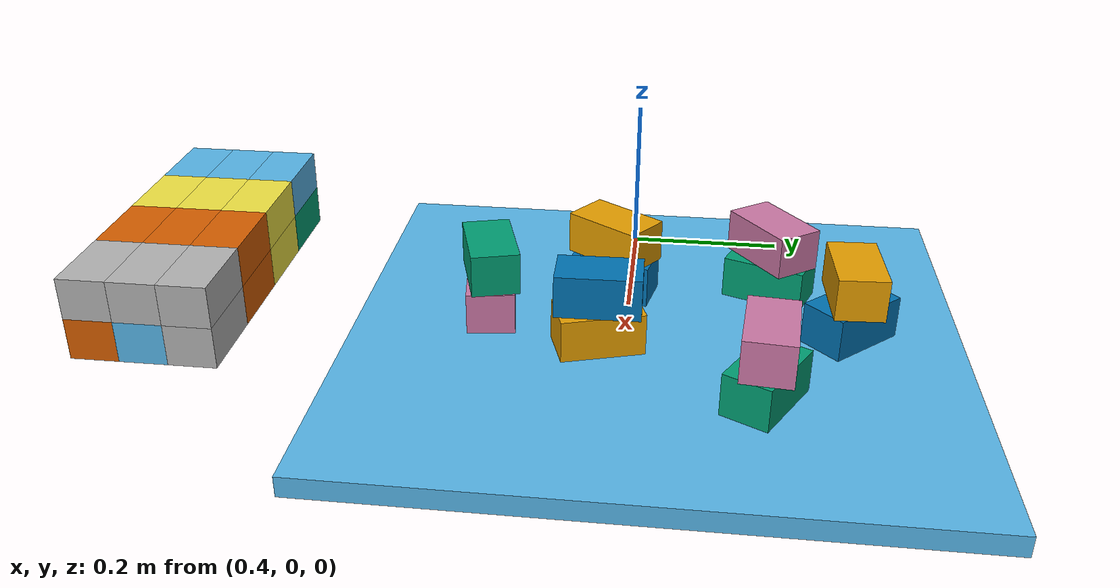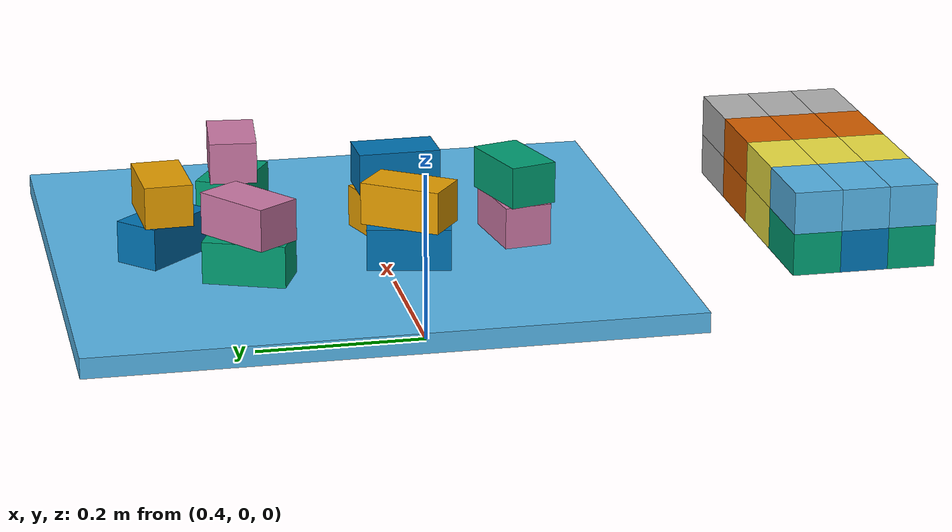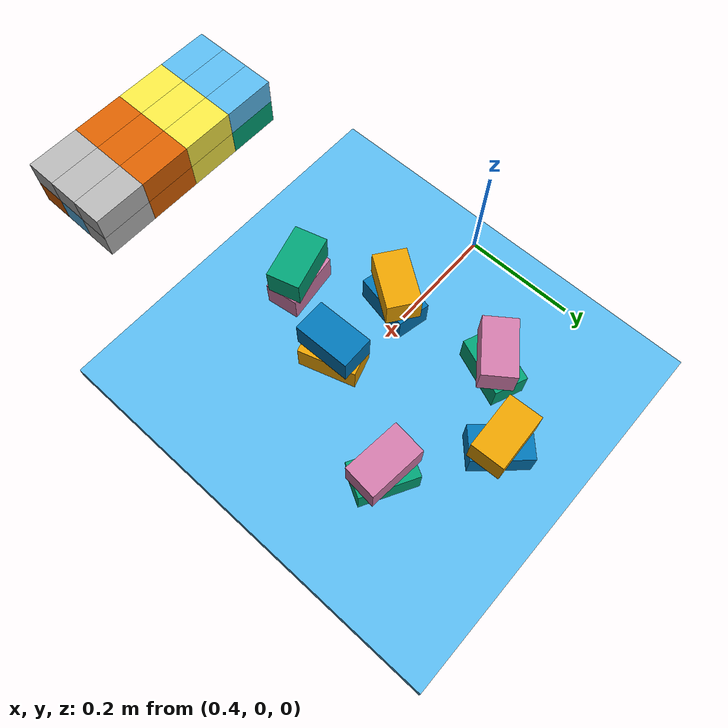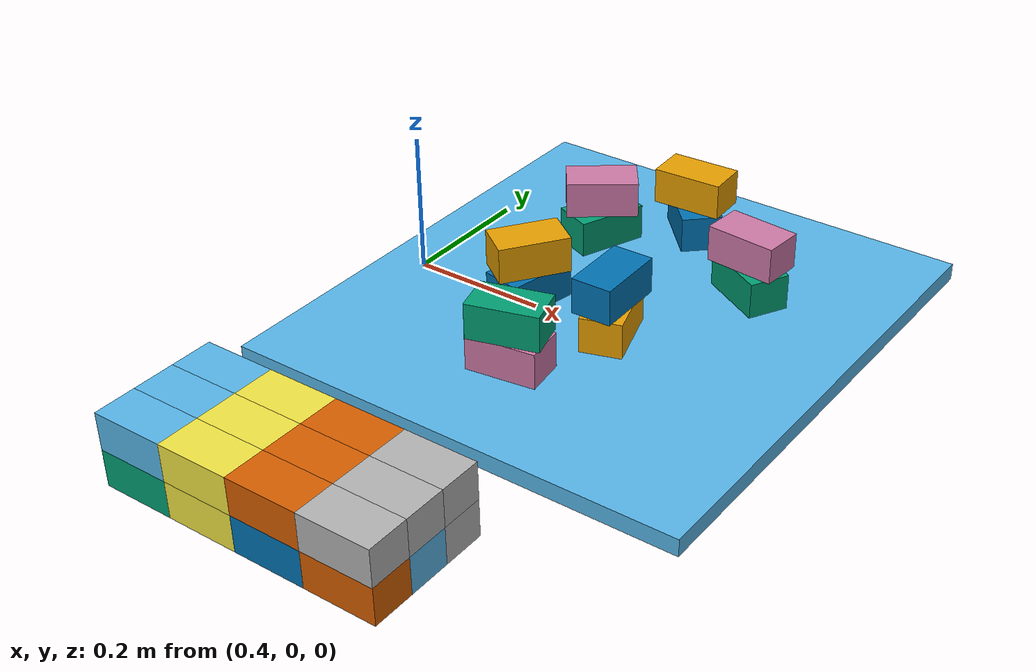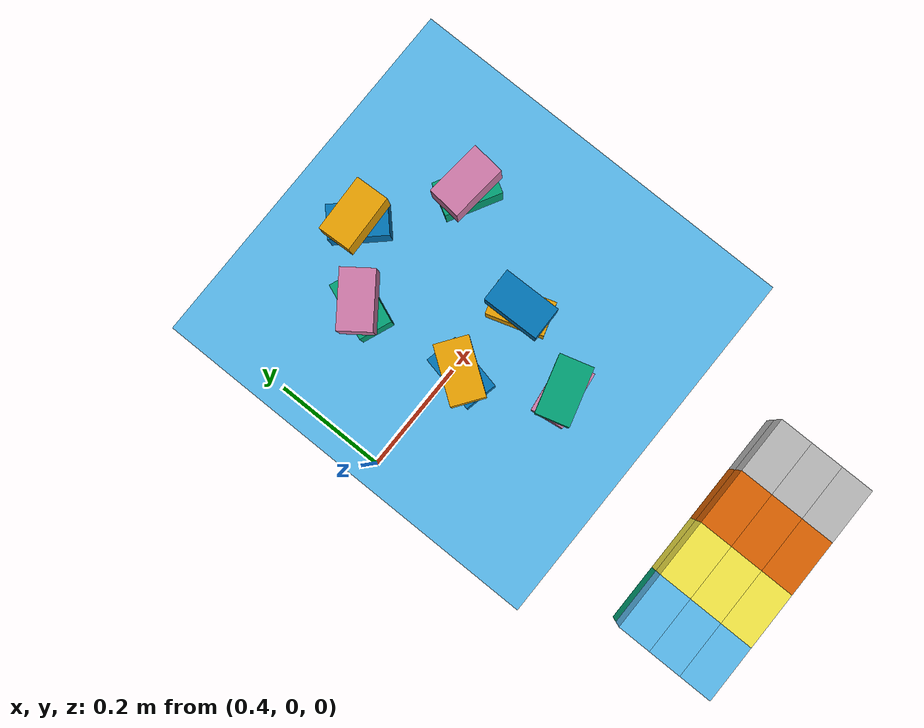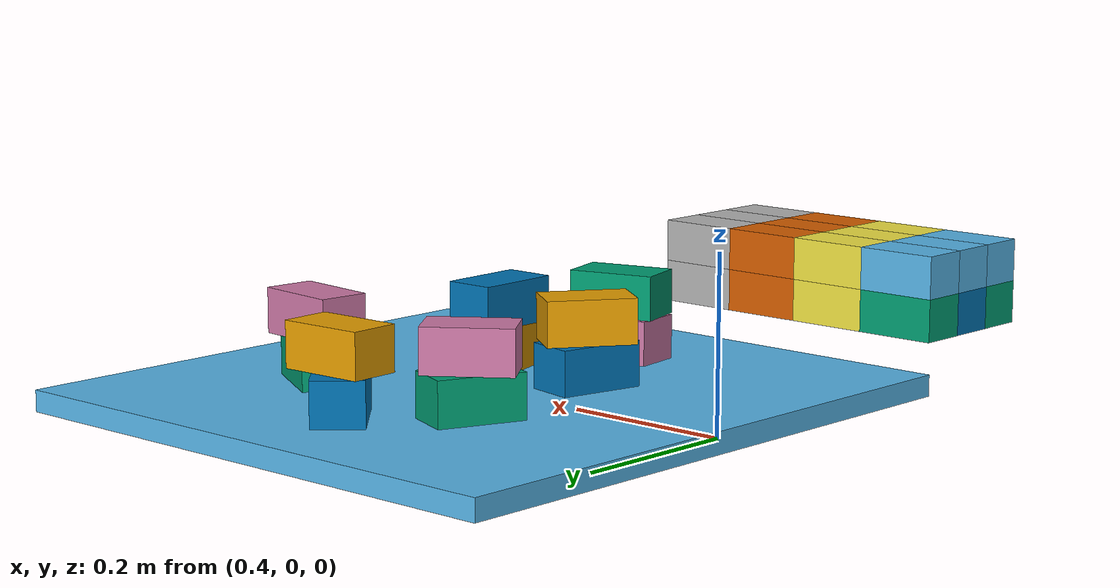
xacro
<?xml version="1.0" encoding="utf-8"?>
<robot name="brick_demo" xmlns:xacro="http://wiki.ros.org/xacro">
	<xacro:include filename="$(find assembly-instances)/assembly_models/picknplace/bricks/urdf/brick_demo_geometry.xacro" />
	<xacro:brick_demo_geometry prefix="workspace_geo_" />
	<link name="base_link" />
	<joint name="world2workspace_geo" type="fixed">
		<parent link="base_link" />
		<child link="workspace_geo_base_link" />
		<origin xyz="0 0 0" rpy="0 0 0" />
	</joint>
</robot>

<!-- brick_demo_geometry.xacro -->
<robot xmlns:xacro="http://wiki.ros.org/xacro">
	<xacro:macro name="brick_demo_geometry" params="prefix">
		<link name="${prefix}base_link" />
		<link name="${prefix}pick_element_0">
			<visual>
				<geometry>
					<mesh filename="$(find assembly-instances)/assembly_models/picknplace/bricks/meshes/collision/element_pick_0.obj" scale="0.001 0.001 0.001" />
				</geometry>
			</visual>
			<collision>
				<geometry>
					<mesh filename="$(find assembly-instances)/assembly_models/picknplace/bricks/meshes/collision/element_pick_0.obj" scale="0.001 0.001 0.001" />
				</geometry>
			</collision>
		</link>
		<joint name="${prefix}base2pick_element_0" type="fixed">
			<parent link="${prefix}base_link" />
			<child link="${prefix}pick_element_0" />
			<origin xyz="0 0 0" rpy="0 0 0" />
		</joint>
		<link name="${prefix}place_element_0">
			<visual>
				<geometry>
					<mesh filename="$(find assembly-instances)/assembly_models/picknplace/bricks/meshes/collision/element_place_0.obj" scale="0.001 0.001 0.001" />
				</geometry>
			</visual>
			<collision>
				<geometry>
					<mesh filename="$(find assembly-instances)/assembly_models/picknplace/bricks/meshes/collision/element_place_0.obj" scale="0.001 0.001 0.001" />
				</geometry>
			</collision>
		</link>
		<joint name="${prefix}base2place_element_0" type="fixed">
			<parent link="${prefix}base_link" />
			<child link="${prefix}place_element_0" />
			<origin xyz="0 0 0" rpy="0 0 0" />
		</joint>
		<link name="${prefix}pick_element_1">
			<visual>
				<geometry>
					<mesh filename="$(find assembly-instances)/assembly_models/picknplace/bricks/meshes/collision/element_pick_1.obj" scale="0.001 0.001 0.001" />
				</geometry>
			</visual>
			<collision>
				<geometry>
					<mesh filename="$(find assembly-instances)/assembly_models/picknplace/bricks/meshes/collision/element_pick_1.obj" scale="0.001 0.001 0.001" />
				</geometry>
			</collision>
		</link>
		<joint name="${prefix}base2pick_element_1" type="fixed">
			<parent link="${prefix}base_link" />
			<child link="${prefix}pick_element_1" />
			<origin xyz="0 0 0" rpy="0 0 0" />
		</joint>
		<link name="${prefix}place_element_1">
			<visual>
				<geometry>
					<mesh filename="$(find assembly-instances)/assembly_models/picknplace/bricks/meshes/collision/element_place_1.obj" scale="0.001 0.001 0.001" />
				</geometry>
			</visual>
			<collision>
				<geometry>
					<mesh filename="$(find assembly-instances)/assembly_models/picknplace/bricks/meshes/collision/element_place_1.obj" scale="0.001 0.001 0.001" />
				</geometry>
			</collision>
		</link>
		<joint name="${prefix}base2place_element_1" type="fixed">
			<parent link="${prefix}base_link" />
			<child link="${prefix}place_element_1" />
			<origin xyz="0 0 0" rpy="0 0 0" />
		</joint>
		<link name="${prefix}pick_element_2">
			<visual>
				<geometry>
					<mesh filename="$(find assembly-instances)/assembly_models/picknplace/bricks/meshes/collision/element_pick_2.obj" scale="0.001 0.001 0.001" />
				</geometry>
			</visual>
			<collision>
				<geometry>
					<mesh filename="$(find assembly-instances)/assembly_models/picknplace/bricks/meshes/collision/element_pick_2.obj" scale="0.001 0.001 0.001" />
				</geometry>
			</collision>
		</link>
		<joint name="${prefix}base2pick_element_2" type="fixed">
			<parent link="${prefix}base_link" />
			<child link="${prefix}pick_element_2" />
			<origin xyz="0 0 0" rpy="0 0 0" />
		</joint>
		<link name="${prefix}place_element_2">
			<visual>
				<geometry>
					<mesh filename="$(find assembly-instances)/assembly_models/picknplace/bricks/meshes/collision/element_place_2.obj" scale="0.001 0.001 0.001" />
				</geometry>
			</visual>
			<collision>
				<geometry>
					<mesh filename="$(find assembly-instances)/assembly_models/picknplace/bricks/meshes/collision/element_place_2.obj" scale="0.001 0.001 0.001" />
				</geometry>
			</collision>
		</link>
		<joint name="${prefix}base2place_element_2" type="fixed">
			<parent link="${prefix}base_link" />
			<child link="${prefix}place_element_2" />
			<origin xyz="0 0 0" rpy="0 0 0" />
		</joint>
		<link name="${prefix}pick_element_3">
			<visual>
				<geometry>
					<mesh filename="$(find assembly-instances)/assembly_models/picknplace/bricks/meshes/collision/element_pick_3.obj" scale="0.001 0.001 0.001" />
				</geometry>
			</visual>
			<collision>
				<geometry>
					<mesh filename="$(find assembly-instances)/assembly_models/picknplace/bricks/meshes/collision/element_pick_3.obj" scale="0.001 0.001 0.001" />
				</geometry>
			</collision>
		</link>
		<joint name="${prefix}base2pick_element_3" type="fixed">
			<parent link="${prefix}base_link" />
			<child link="${prefix}pick_element_3" />
			<origin xyz="0 0 0" rpy="0 0 0" />
		</joint>
		<link name="${prefix}place_element_3">
			<visual>
				<geometry>
					<mesh filename="$(find assembly-instances)/assembly_models/picknplace/bricks/meshes/collision/element_place_3.obj" scale="0.001 0.001 0.001" />
				</geometry>
			</visual>
			<collision>
				<geometry>
					<mesh filename="$(find assembly-instances)/assembly_models/picknplace/bricks/meshes/collision/element_place_3.obj" scale="0.001 0.001 0.001" />
				</geometry>
			</collision>
		</link>
		<joint name="${prefix}base2place_element_3" type="fixed">
			<parent link="${prefix}base_link" />
			<child link="${prefix}place_element_3" />
			<origin xyz="0 0 0" rpy="0 0 0" />
		</joint>
		<link name="${prefix}pick_element_4">
			<visual>
				<geometry>
					<mesh filename="$(find assembly-instances)/assembly_models/picknplace/bricks/meshes/collision/element_pick_4.obj" scale="0.001 0.001 0.001" />
				</geometry>
			</visual>
			<collision>
				<geometry>
					<mesh filename="$(find assembly-instances)/assembly_models/picknplace/bricks/meshes/collision/element_pick_4.obj" scale="0.001 0.001 0.001" />
				</geometry>
			</collision>
		</link>
		<joint name="${prefix}base2pick_element_4" type="fixed">
			<parent link="${prefix}base_link" />
			<child link="${prefix}pick_element_4" />
			<origin xyz="0 0 0" rpy="0 0 0" />
		</joint>
		<link name="${prefix}place_element_4">
			<visual>
				<geometry>
					<mesh filename="$(find assembly-instances)/assembly_models/picknplace/bricks/meshes/collision/element_place_4.obj" scale="0.001 0.001 0.001" />
				</geometry>
			</visual>
			<collision>
				<geometry>
					<mesh filename="$(find assembly-instances)/assembly_models/picknplace/bricks/meshes/collision/element_place_4.obj" scale="0.001 0.001 0.001" />
				</geometry>
			</collision>
		</link>
		<joint name="${prefix}base2place_element_4" type="fixed">
			<parent link="${prefix}base_link" />
			<child link="${prefix}place_element_4" />
			<origin xyz="0 0 0" rpy="0 0 0" />
		</joint>
		<link name="${prefix}pick_element_5">
			<visual>
				<geometry>
					<mesh filename="$(find assembly-instances)/assembly_models/picknplace/bricks/meshes/collision/element_pick_5.obj" scale="0.001 0.001 0.001" />
				</geometry>
			</visual>
			<collision>
				<geometry>
					<mesh filename="$(find assembly-instances)/assembly_models/picknplace/bricks/meshes/collision/element_pick_5.obj" scale="0.001 0.001 0.001" />
				</geometry>
			</collision>
		</link>
		<joint name="${prefix}base2pick_element_5" type="fixed">
			<parent link="${prefix}base_link" />
			<child link="${prefix}pick_element_5" />
			<origin xyz="0 0 0" rpy="0 0 0" />
		</joint>
		<link name="${prefix}place_element_5">
			<visual>
				<geometry>
					<mesh filename="$(find assembly-instances)/assembly_models/picknplace/bricks/meshes/collision/element_place_5.obj" scale="0.001 0.001 0.001" />
				</geometry>
			</visual>
			<collision>
				<geometry>
					<mesh filename="$(find assembly-instances)/assembly_models/picknplace/bricks/meshes/collision/element_place_5.obj" scale="0.001 0.001 0.001" />
				</geometry>
			</collision>
		</link>
		<joint name="${prefix}base2place_element_5" type="fixed">
			<parent link="${prefix}base_link" />
			<child link="${prefix}place_element_5" />
			<origin xyz="0 0 0" rpy="0 0 0" />
		</joint>
		<link name="${prefix}pick_element_6">
			<visual>
				<geometry>
					<mesh filename="$(find assembly-instances)/assembly_models/picknplace/bricks/meshes/collision/element_pick_6.obj" scale="0.001 0.001 0.001" />
				</geometry>
			</visual>
			<collision>
				<geometry>
					<mesh filename="$(find assembly-instances)/assembly_models/picknplace/bricks/meshes/collision/element_pick_6.obj" scale="0.001 0.001 0.001" />
				</geometry>
			</collision>
		</link>
		<joint name="${prefix}base2pick_element_6" type="fixed">
			<parent link="${prefix}base_link" />
			<child link="${prefix}pick_element_6" />
			<origin xyz="0 0 0" rpy="0 0 0" />
		</joint>
		<link name="${prefix}place_element_6">
			<visual>
				<geometry>
					<mesh filename="$(find assembly-instances)/assembly_models/picknplace/bricks/meshes/collision/element_place_6.obj" scale="0.001 0.001 0.001" />
				</geometry>
			</visual>
			<collision>
				<geometry>
					<mesh filename="$(find assembly-instances)/assembly_models/picknplace/bricks/meshes/collision/element_place_6.obj" scale="0.001 0.001 0.001" />
				</geometry>
			</collision>
		</link>
		<joint name="${prefix}base2place_element_6" type="fixed">
			<parent link="${prefix}base_link" />
			<child link="${prefix}place_element_6" />
			<origin xyz="0 0 0" rpy="0 0 0" />
		</joint>
		<link name="${prefix}pick_element_7">
			<visual>
				<geometry>
					<mesh filename="$(find assembly-instances)/assembly_models/picknplace/bricks/meshes/collision/element_pick_7.obj" scale="0.001 0.001 0.001" />
				</geometry>
			</visual>
			<collision>
				<geometry>
					<mesh filename="$(find assembly-instances)/assembly_models/picknplace/bricks/meshes/collision/element_pick_7.obj" scale="0.001 0.001 0.001" />
				</geometry>
			</collision>
		</link>
		<joint name="${prefix}base2pick_element_7" type="fixed">
			<parent link="${prefix}base_link" />
			<child link="${prefix}pick_element_7" />
			<origin xyz="0 0 0" rpy="0 0 0" />
		</joint>
		<link name="${prefix}place_element_7">
			<visual>
				<geometry>
					<mesh filename="$(find assembly-instances)/assembly_models/picknplace/bricks/meshes/collision/element_place_7.obj" scale="0.001 0.001 0.001" />
				</geometry>
			</visual>
			<collision>
				<geometry>
					<mesh filename="$(find assembly-instances)/assembly_models/picknplace/bricks/meshes/collision/element_place_7.obj" scale="0.001 0.001 0.001" />
				</geometry>
			</collision>
		</link>
		<joint name="${prefix}base2place_element_7" type="fixed">
			<parent link="${prefix}base_link" />
			<child link="${prefix}place_element_7" />
			<origin xyz="0 0 0" rpy="0 0 0" />
		</joint>
		<link name="${prefix}pick_element_8">
			<visual>
				<geometry>
					<mesh filename="$(find assembly-instances)/assembly_models/picknplace/bricks/meshes/collision/element_pick_8.obj" scale="0.001 0.001 0.001" />
				</geometry>
			</visual>
			<collision>
				<geometry>
					<mesh filename="$(find assembly-instances)/assembly_models/picknplace/bricks/meshes/collision/element_pick_8.obj" scale="0.001 0.001 0.001" />
				</geometry>
			</collision>
		</link>
		<joint name="${prefix}base2pick_element_8" type="fixed">
			<parent link="${prefix}base_link" />
			<child link="${prefix}pick_element_8" />
			<origin xyz="0 0 0" rpy="0 0 0" />
		</joint>
		<link name="${prefix}place_element_8">
			<visual>
				<geometry>
					<mesh filename="$(find assembly-instances)/assembly_models/picknplace/bricks/meshes/collision/element_place_8.obj" scale="0.001 0.001 0.001" />
				</geometry>
			</visual>
			<collision>
				<geometry>
					<mesh filename="$(find assembly-instances)/assembly_models/picknplace/bricks/meshes/collision/element_place_8.obj" scale="0.001 0.001 0.001" />
				</geometry>
			</collision>
		</link>
		<joint name="${prefix}base2place_element_8" type="fixed">
			<parent link="${prefix}base_link" />
			<child link="${prefix}place_element_8" />
			<origin xyz="0 0 0" rpy="0 0 0" />
		</joint>
		<link name="${prefix}pick_element_9">
			<visual>
				<geometry>
					<mesh filename="$(find assembly-instances)/assembly_models/picknplace/bricks/meshes/collision/element_pick_9.obj" scale="0.001 0.001 0.001" />
				</geometry>
			</visual>
			<collision>
				<geometry>
					<mesh filename="$(find assembly-instances)/assembly_models/picknplace/bricks/meshes/collision/element_pick_9.obj" scale="0.001 0.001 0.001" />
				</geometry>
			</collision>
		</link>
		<joint name="${prefix}base2pick_element_9" type="fixed">
			<parent link="${prefix}base_link" />
			<child link="${prefix}pick_element_9" />
			<origin xyz="0 0 0" rpy="0 0 0" />
		</joint>
		<link name="${prefix}place_element_9">
			<visual>
				<geometry>
					<mesh filename="$(find assembly-instances)/assembly_models/picknplace/bricks/meshes/collision/element_place_9.obj" scale="0.001 0.001 0.001" />
				</geometry>
			</visual>
			<collision>
				<geometry>
					<mesh filename="$(find assembly-instances)/assembly_models/picknplace/bricks/meshes/collision/element_place_9.obj" scale="0.001 0.001 0.001" />
				</geometry>
			</collision>
		</link>
		<joint name="${prefix}base2place_element_9" type="fixed">
			<parent link="${prefix}base_link" />
			<child link="${prefix}place_element_9" />
			<origin xyz="0 0 0" rpy="0 0 0" />
		</joint>
		<link name="${prefix}pick_element_10">
			<visual>
				<geometry>
					<mesh filename="$(find assembly-instances)/assembly_models/picknplace/bricks/meshes/collision/element_pick_10.obj" scale="0.001 0.001 0.001" />
				</geometry>
			</visual>
			<collision>
				<geometry>
					<mesh filename="$(find assembly-instances)/assembly_models/picknplace/bricks/meshes/collision/element_pick_10.obj" scale="0.001 0.001 0.001" />
				</geometry>
			</collision>
		</link>
		<joint name="${prefix}base2pick_element_10" type="fixed">
			<parent link="${prefix}base_link" />
			<child link="${prefix}pick_element_10" />
			<origin xyz="0 0 0" rpy="0 0 0" />
		</joint>
		<link name="${prefix}place_element_10">
			<visual>
				<geometry>
					<mesh filename="$(find assembly-instances)/assembly_models/picknplace/bricks/meshes/collision/element_place_10.obj" scale="0.001 0.001 0.001" />
				</geometry>
			</visual>
			<collision>
				<geometry>
					<mesh filename="$(find assembly-instances)/assembly_models/picknplace/bricks/meshes/collision/element_place_10.obj" scale="0.001 0.001 0.001" />
				</geometry>
			</collision>
		</link>
		<joint name="${prefix}base2place_element_10" type="fixed">
			<parent link="${prefix}base_link" />
			<child link="${prefix}place_element_10" />
			<origin xyz="0 0 0" rpy="0 0 0" />
		</joint>
		<link name="${prefix}pick_element_11">
			<visual>
				<geometry>
					<mesh filename="$(find assembly-instances)/assembly_models/picknplace/bricks/meshes/collision/element_pick_11.obj" scale="0.001 0.001 0.001" />
				</geometry>
			</visual>
			<collision>
				<geometry>
					<mesh filename="$(find assembly-instances)/assembly_models/picknplace/bricks/meshes/collision/element_pick_11.obj" scale="0.001 0.001 0.001" />
				</geometry>
			</collision>
		</link>
		<joint name="${prefix}base2pick_element_11" type="fixed">
			<parent link="${prefix}base_link" />
			<child link="${prefix}pick_element_11" />
			<origin xyz="0 0 0" rpy="0 0 0" />
		</joint>
		<link name="${prefix}place_element_11">
			<visual>
				<geometry>
					<mesh filename="$(find assembly-instances)/assembly_models/picknplace/bricks/meshes/collision/element_place_11.obj" scale="0.001 0.001 0.001" />
				</geometry>
			</visual>
			<collision>
				<geometry>
					<mesh filename="$(find assembly-instances)/assembly_models/picknplace/bricks/meshes/collision/element_place_11.obj" scale="0.001 0.001 0.001" />
				</geometry>
			</collision>
		</link>
		<joint name="${prefix}base2place_element_11" type="fixed">
			<parent link="${prefix}base_link" />
			<child link="${prefix}place_element_11" />
			<origin xyz="0 0 0" rpy="0 0 0" />
		</joint>
		<link name="${prefix}pick_support_object_0">
			<visual>
				<geometry>
					<mesh filename="$(find assembly-instances)/assembly_models/picknplace/bricks/meshes/collision/support_place_table.obj" scale="0.001 0.001 0.001" />
				</geometry>
			</visual>
			<collision>
				<geometry>
					<mesh filename="$(find assembly-instances)/assembly_models/picknplace/bricks/meshes/collision/support_place_table.obj" scale="0.001 0.001 0.001" />
				</geometry>
			</collision>
		</link>
		<joint name="${prefix}base2pick_support_object_0" type="fixed">
			<parent link="${prefix}base_link" />
			<child link="${prefix}pick_support_object_0" />
			<origin xyz="0 0 0" rpy="0 0 0" />
		</joint>
		<link name="${prefix}place_support_object_0">
			<visual>
				<geometry>
					<mesh filename="$(find assembly-instances)/assembly_models/picknplace/bricks/meshes/collision/pick_left_over_bricks_0.obj" scale="0.001 0.001 0.001" />
				</geometry>
			</visual>
			<collision>
				<geometry>
					<mesh filename="$(find assembly-instances)/assembly_models/picknplace/bricks/meshes/collision/pick_left_over_bricks_0.obj" scale="0.001 0.001 0.001" />
				</geometry>
			</collision>
		</link>
		<joint name="${prefix}base2place_support_object_0" type="fixed">
			<parent link="${prefix}base_link" />
			<child link="${prefix}place_support_object_0" />
			<origin xyz="0 0 0" rpy="0 0 0" />
		</joint>
		<link name="${prefix}place_support_object_1">
			<visual>
				<geometry>
					<mesh filename="$(find assembly-instances)/assembly_models/picknplace/bricks/meshes/collision/pick_left_over_bricks_1.obj" scale="0.001 0.001 0.001" />
				</geometry>
			</visual>
			<collision>
				<geometry>
					<mesh filename="$(find assembly-instances)/assembly_models/picknplace/bricks/meshes/collision/pick_left_over_bricks_1.obj" scale="0.001 0.001 0.001" />
				</geometry>
			</collision>
		</link>
		<joint name="${prefix}base2place_support_object_1" type="fixed">
			<parent link="${prefix}base_link" />
			<child link="${prefix}place_support_object_1" />
			<origin xyz="0 0 0" rpy="0 0 0" />
		</joint>
		<link name="${prefix}place_support_object_2">
			<visual>
				<geometry>
					<mesh filename="$(find assembly-instances)/assembly_models/picknplace/bricks/meshes/collision/pick_left_over_bricks_4.obj" scale="0.001 0.001 0.001" />
				</geometry>
			</visual>
			<collision>
				<geometry>
					<mesh filename="$(find assembly-instances)/assembly_models/picknplace/bricks/meshes/collision/pick_left_over_bricks_4.obj" scale="0.001 0.001 0.001" />
				</geometry>
			</collision>
		</link>
		<joint name="${prefix}base2place_support_object_2" type="fixed">
			<parent link="${prefix}base_link" />
			<child link="${prefix}place_support_object_2" />
			<origin xyz="0 0 0" rpy="0 0 0" />
		</joint>
		<link name="${prefix}place_support_object_3">
			<visual>
				<geometry>
					<mesh filename="$(find assembly-instances)/assembly_models/picknplace/bricks/meshes/collision/pick_left_over_bricks_2.obj" scale="0.001 0.001 0.001" />
				</geometry>
			</visual>
			<collision>
				<geometry>
					<mesh filename="$(find assembly-instances)/assembly_models/picknplace/bricks/meshes/collision/pick_left_over_bricks_2.obj" scale="0.001 0.001 0.001" />
				</geometry>
			</collision>
		</link>
		<joint name="${prefix}base2place_support_object_3" type="fixed">
			<parent link="${prefix}base_link" />
			<child link="${prefix}place_support_object_3" />
			<origin xyz="0 0 0" rpy="0 0 0" />
		</joint>
		<link name="${prefix}place_support_object_4">
			<visual>
				<geometry>
					<mesh filename="$(find assembly-instances)/assembly_models/picknplace/bricks/meshes/collision/pick_left_over_bricks_5.obj" scale="0.001 0.001 0.001" />
				</geometry>
			</visual>
			<collision>
				<geometry>
					<mesh filename="$(find assembly-instances)/assembly_models/picknplace/bricks/meshes/collision/pick_left_over_bricks_5.obj" scale="0.001 0.001 0.001" />
				</geometry>
			</collision>
		</link>
		<joint name="${prefix}base2place_support_object_4" type="fixed">
			<parent link="${prefix}base_link" />
			<child link="${prefix}place_support_object_4" />
			<origin xyz="0 0 0" rpy="0 0 0" />
		</joint>
		<link name="${prefix}place_support_object_5">
			<visual>
				<geometry>
					<mesh filename="$(find assembly-instances)/assembly_models/picknplace/bricks/meshes/collision/pick_left_over_bricks_3.obj" scale="0.001 0.001 0.001" />
				</geometry>
			</visual>
			<collision>
				<geometry>
					<mesh filename="$(find assembly-instances)/assembly_models/picknplace/bricks/meshes/collision/pick_left_over_bricks_3.obj" scale="0.001 0.001 0.001" />
				</geometry>
			</collision>
		</link>
		<joint name="${prefix}base2place_support_object_5" type="fixed">
			<parent link="${prefix}base_link" />
			<child link="${prefix}place_support_object_5" />
			<origin xyz="0 0 0" rpy="0 0 0" />
		</joint>
		<link name="${prefix}place_support_object_6">
			<visual>
				<geometry>
					<mesh filename="$(find assembly-instances)/assembly_models/picknplace/bricks/meshes/collision/pick_left_over_bricks_6.obj" scale="0.001 0.001 0.001" />
				</geometry>
			</visual>
			<collision>
				<geometry>
					<mesh filename="$(find assembly-instances)/assembly_models/picknplace/bricks/meshes/collision/pick_left_over_bricks_6.obj" scale="0.001 0.001 0.001" />
				</geometry>
			</collision>
		</link>
		<joint name="${prefix}base2place_support_object_6" type="fixed">
			<parent link="${prefix}base_link" />
			<child link="${prefix}place_support_object_6" />
			<origin xyz="0 0 0" rpy="0 0 0" />
		</joint>
		<link name="${prefix}place_support_object_7">
			<visual>
				<geometry>
					<mesh filename="$(find assembly-instances)/assembly_models/picknplace/bricks/meshes/collision/pick_left_over_bricks_7.obj" scale="0.001 0.001 0.001" />
				</geometry>
			</visual>
			<collision>
				<geometry>
					<mesh filename="$(find assembly-instances)/assembly_models/picknplace/bricks/meshes/collision/pick_left_over_bricks_7.obj" scale="0.001 0.001 0.001" />
				</geometry>
			</collision>
		</link>
		<joint name="${prefix}base2place_support_object_7" type="fixed">
			<parent link="${prefix}base_link" />
			<child link="${prefix}place_support_object_7" />
			<origin xyz="0 0 0" rpy="0 0 0" />
		</joint>
		<link name="${prefix}place_support_object_8">
			<visual>
				<geometry>
					<mesh filename="$(find assembly-instances)/assembly_models/picknplace/bricks/meshes/collision/pick_left_over_bricks_8.obj" scale="0.001 0.001 0.001" />
				</geometry>
			</visual>
			<collision>
				<geometry>
					<mesh filename="$(find assembly-instances)/assembly_models/picknplace/bricks/meshes/collision/pick_left_over_bricks_8.obj" scale="0.001 0.001 0.001" />
				</geometry>
			</collision>
		</link>
		<joint name="${prefix}base2place_support_object_8" type="fixed">
			<parent link="${prefix}base_link" />
			<child link="${prefix}place_support_object_8" />
			<origin xyz="0 0 0" rpy="0 0 0" />
		</joint>
		<link name="${prefix}place_support_object_9">
			<visual>
				<geometry>
					<mesh filename="$(find assembly-instances)/assembly_models/picknplace/bricks/meshes/collision/pick_left_over_bricks_9.obj" scale="0.001 0.001 0.001" />
				</geometry>
			</visual>
			<collision>
				<geometry>
					<mesh filename="$(find assembly-instances)/assembly_models/picknplace/bricks/meshes/collision/pick_left_over_bricks_9.obj" scale="0.001 0.001 0.001" />
				</geometry>
			</collision>
		</link>
		<joint name="${prefix}base2place_support_object_9" type="fixed">
			<parent link="${prefix}base_link" />
			<child link="${prefix}place_support_object_9" />
			<origin xyz="0 0 0" rpy="0 0 0" />
		</joint>
		<link name="${prefix}place_support_object_10">
			<visual>
				<geometry>
					<mesh filename="$(find assembly-instances)/assembly_models/picknplace/bricks/meshes/collision/pick_left_over_bricks_10.obj" scale="0.001 0.001 0.001" />
				</geometry>
			</visual>
			<collision>
				<geometry>
					<mesh filename="$(find assembly-instances)/assembly_models/picknplace/bricks/meshes/collision/pick_left_over_bricks_10.obj" scale="0.001 0.001 0.001" />
				</geometry>
			</collision>
		</link>
		<joint name="${prefix}base2place_support_object_10" type="fixed">
			<parent link="${prefix}base_link" />
			<child link="${prefix}place_support_object_10" />
			<origin xyz="0 0 0" rpy="0 0 0" />
		</joint>
		<link name="${prefix}place_support_object_11">
			<visual>
				<geometry>
					<mesh filename="$(find assembly-instances)/assembly_models/picknplace/bricks/meshes/collision/pick_left_over_bricks_11.obj" scale="0.001 0.001 0.001" />
				</geometry>
			</visual>
			<collision>
				<geometry>
					<mesh filename="$(find assembly-instances)/assembly_models/picknplace/bricks/meshes/collision/pick_left_over_bricks_11.obj" scale="0.001 0.001 0.001" />
				</geometry>
			</collision>
		</link>
		<joint name="${prefix}base2place_support_object_11" type="fixed">
			<parent link="${prefix}base_link" />
			<child link="${prefix}place_support_object_11" />
			<origin xyz="0 0 0" rpy="0 0 0" />
		</joint>
	</xacro:macro>
</robot>
